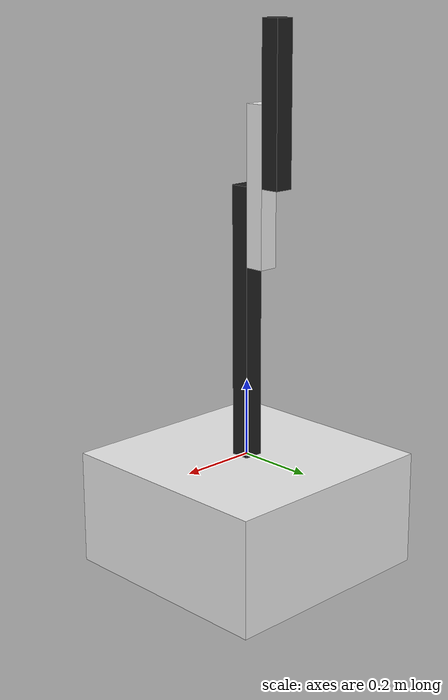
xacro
<?xml version="1.0"?>
<robot name="something" xmlns:xacro="http://www.ros.org/wiki/xacro" >
<xacro:macro name="cube" params="name x y z xyz rpy mass" >
    <link name="${name}">
        <visual>
            <geometry>
                <box size="${x} ${y} ${z}"/>
            </geometry>
            <origin rpy="${rpy}" xyz="${xyz}"/>
        </visual>
        <collision>
            <geometry>
                <box size="${x} ${y} ${z}"/>
            </geometry>
            <origin rpy="${rpy}" xyz="${xyz}"/>
        </collision>
        <inertial>
            <mass value="${mass}" />
                <inertia ixx="${mass/12*(y*y+z*z)}"
                iyy="${mass/12*(x*x+z*z)}"
                izz="${mass/12*(y*y+x*x)}"
                ixy="0.0" ixz="0.0" iyz="0.0"/>
            <origin xyz="0 0 ${z/2}"/>
        </inertial>
    </link>
</xacro:macro>
<xacro:cube name="base_link" x="0.6" y="0.6" z="0.3" xyz="0 0 -0.15" rpy="0 0 0" mass="1"/>

<xacro:cube name="fixedArm" x="0.05" y="0.05" z="0.7" xyz="0 0 0.35" rpy="0 0 0" mass="1"/>
<xacro:cube name="firstArm" x="0.05" y="0.05" z="0.4" xyz="0 0 0.1" rpy="0 0 0" mass="1"/>
<xacro:cube name="secondArm" x="0.05" y="0.05" z="0.4" xyz="0 0 0.1" rpy="0 0 0" mass="1"/>
  <link name="world"/>

  <joint name="fixed" type="fixed">
    <parent link="world"/>
    <child link="base_link"/>
  </joint>

<joint name="fixed_to_base" type="fixed">
    <parent link="base_link"/>
    <child link="fixedArm"/>
</joint>
<joint name="first_to_fixed" type="continuous">
    <parent link="fixedArm"/>
    <child link="firstArm"/>
    <origin xyz="0 0.05 0.6"/>
    <axis xyz="0 1 0"/>
        <dynamics damping="0.7"/>

</joint>

<joint name="second_to_first" type="continuous">
    <parent link="firstArm"/>
    <child link="secondArm"/>
    <origin xyz="0 0.05 0.2"/>
    <axis xyz="0 1 0"/>
        <dynamics damping="0.7"/>

</joint>

  <gazebo reference="base_link">
    <material>Gazebo/White</material>
  </gazebo>
  <gazebo reference="fixedArm">
    <material>Gazebo/Black</material>
  </gazebo>
    <gazebo reference="firstArm">
    <material>Gazebo/White</material>
  </gazebo>
    <gazebo reference="secondArm">
    <material>Gazebo/Black</material>
  </gazebo>

</robot>
